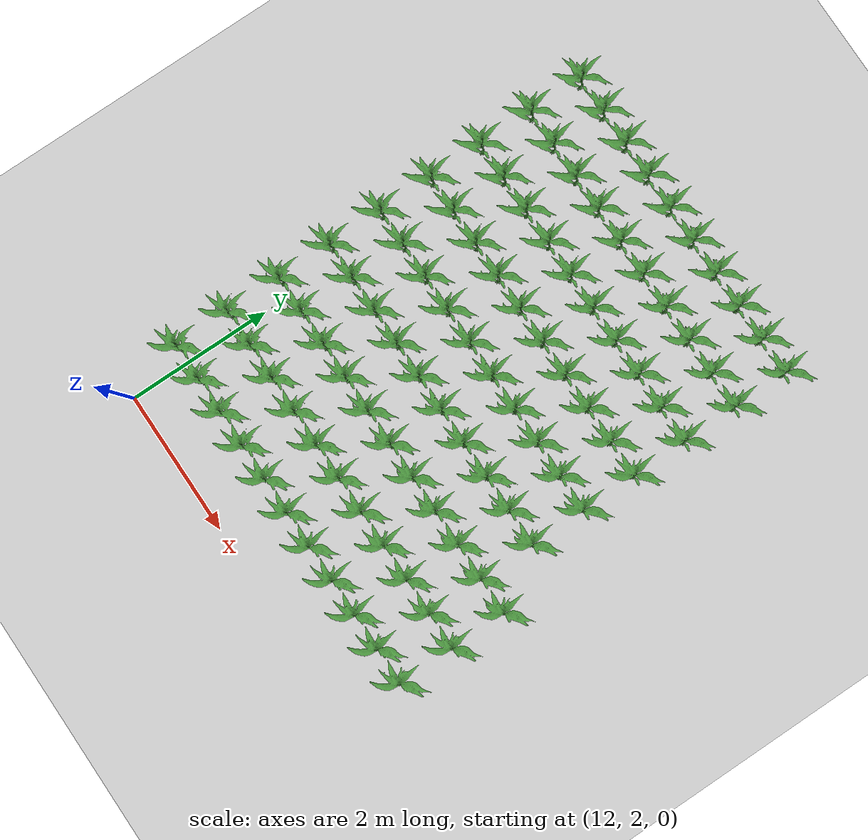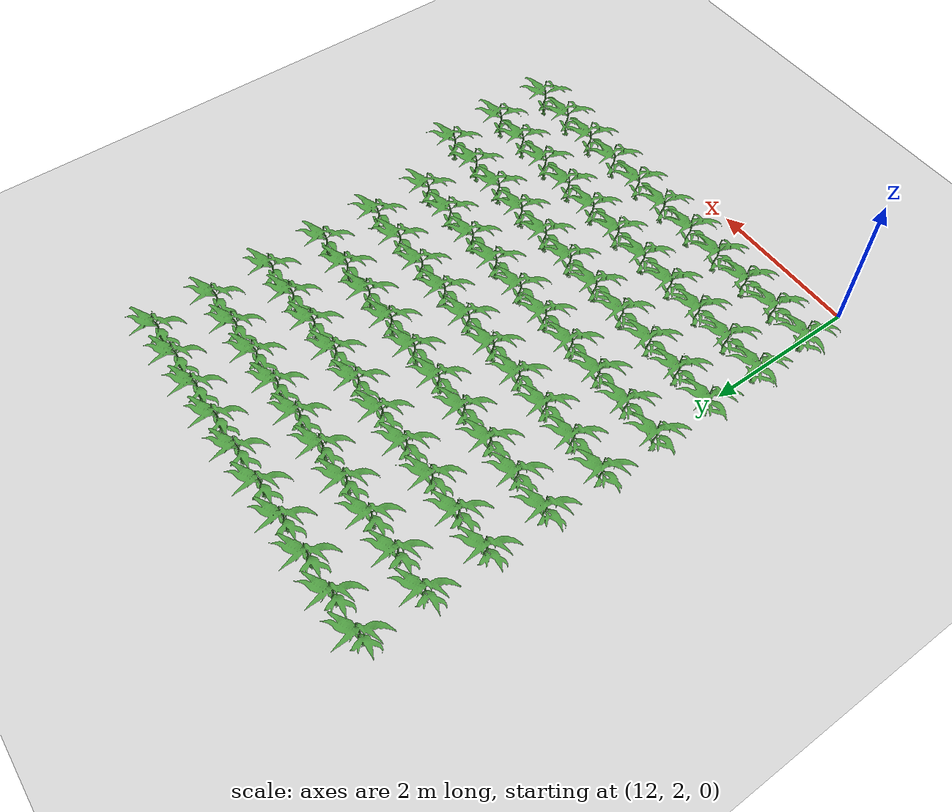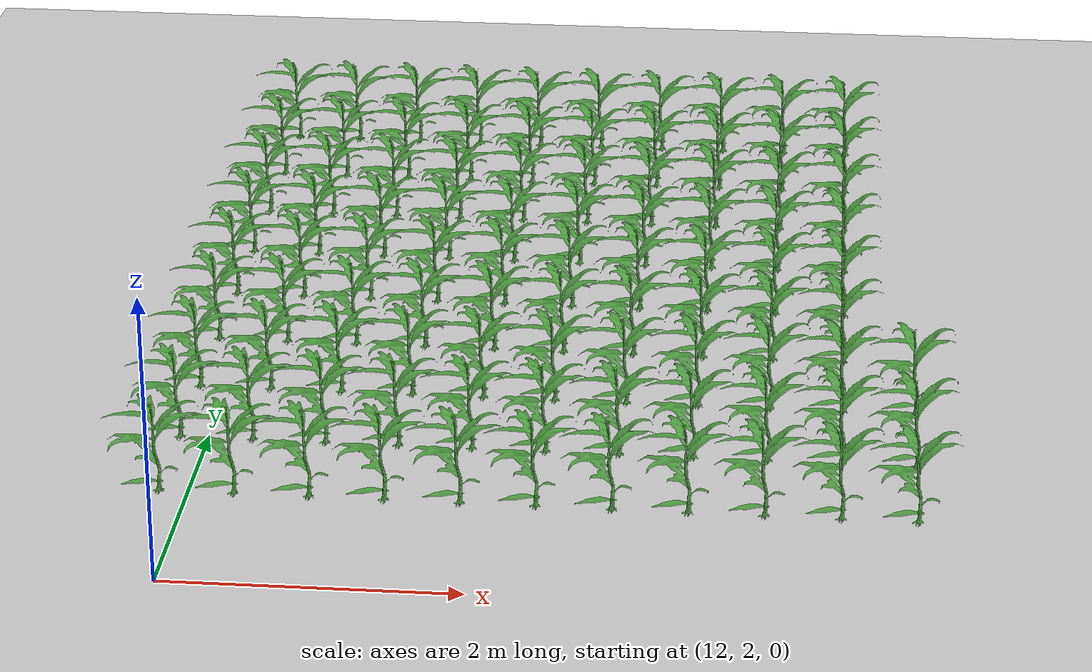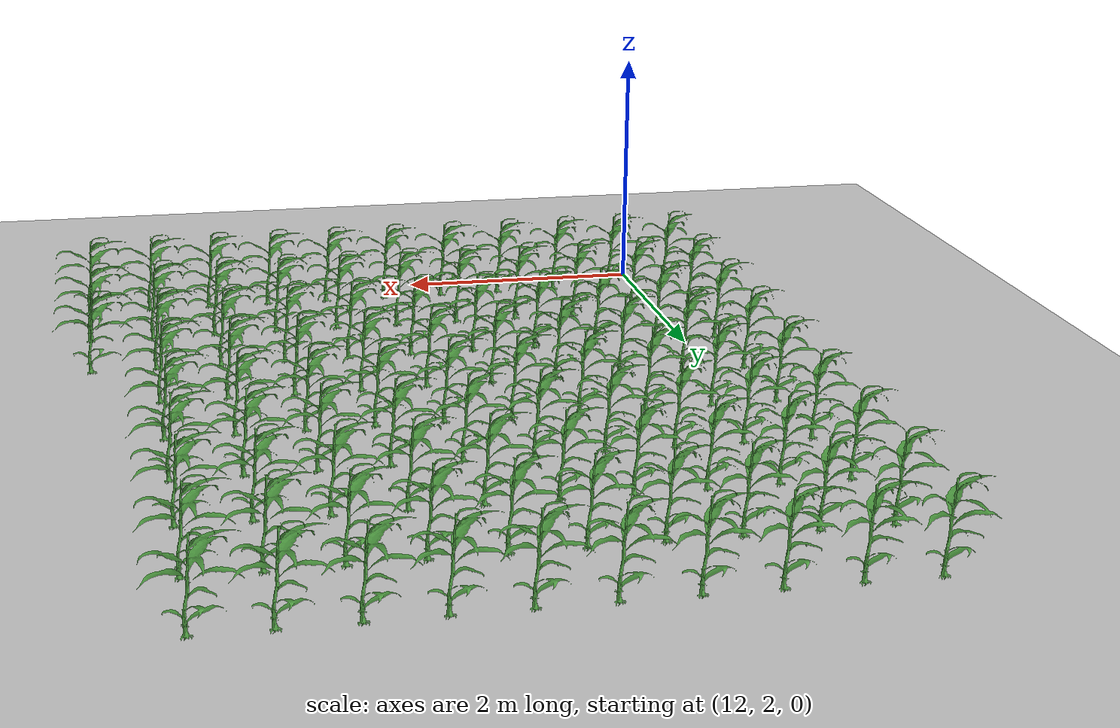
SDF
<sdf version="1.7">
 <world name="default">
  <model name="ground_plane">
   <static>1</static>
   <link name="link">
    <collision name="collision">
     <geometry><plane><normal>0 0 1</normal><size>100 100</size></plane></geometry>
     <surface>
      <contact><collide_bitmask>65535</collide_bitmask></contact>
      <friction><ode><mu>100</mu><mu2>50</mu2></ode></friction>
     </surface>
    </collision>
    <visual name="visual">
     <cast_shadows>0</cast_shadows>
     <geometry><plane><normal>0 0 1</normal><size>100 100</size></plane></geometry>
     <material>
      <script><uri>file://media/materials/scripts/gazebo.material</uri><name>Gazebo/Grey</name></script>
     </material>
    </visual>
   </link>
  </model>
  <model name="bush_1_nc_220">
   <static>1</static>
   <link name="link">
    <visual name="visual">
     <geometry>
      <mesh><uri>model://corn_stalk/meshes/corn_1.obj</uri><scale>0.002 0.002 0.001</scale></mesh>
     </geometry>
     <material>
      <script><uri>file://media/materials/scripts/gazebo.material</uri><name>Gazebo/Grass</name></script>
     </material>
    </visual>
   </link>
   <pose>10.0 4.572 0.171977 0 -0 0</pose>
  </model>
  <model name="bush_1_nc_221">
   <static>1</static>
   <link name="link">
    <visual name="visual">
     <geometry>
      <mesh><uri>model://corn_stalk/meshes/corn_1.obj</uri><scale>0.002 0.002 0.001</scale></mesh>
     </geometry>
     <material>
      <script><uri>file://media/materials/scripts/gazebo.material</uri><name>Gazebo/Grass</name></script>
     </material>
    </visual>
   </link>
   <pose>10.5 4.572 0.171977 0 -0 0</pose>
  </model>
  <model name="bush_1_nc_222">
   <static>1</static>
   <link name="link">
    <visual name="visual">
     <geometry>
      <mesh><uri>model://corn_stalk/meshes/corn_1.obj</uri><scale>0.002 0.002 0.001</scale></mesh>
     </geometry>
     <material>
      <script><uri>file://media/materials/scripts/gazebo.material</uri><name>Gazebo/Grass</name></script>
     </material>
    </visual>
   </link>
   <pose>11.0 4.572 0.171977 0 -0 0</pose>
  </model>
  <model name="bush_1_nc_223">
   <static>1</static>
   <link name="link">
    <visual name="visual">
     <geometry>
      <mesh><uri>model://corn_stalk/meshes/corn_1.obj</uri><scale>0.002 0.002 0.001</scale></mesh>
     </geometry>
     <material>
      <script><uri>file://media/materials/scripts/gazebo.material</uri><name>Gazebo/Grass</name></script>
     </material>
    </visual>
   </link>
   <pose>11.5 4.572 0.171977 0 -0 0</pose>
  </model>
  <model name="bush_1_nc_224">
   <static>1</static>
   <link name="link">
    <visual name="visual">
     <geometry>
      <mesh><uri>model://corn_stalk/meshes/corn_1.obj</uri><scale>0.002 0.002 0.001</scale></mesh>
     </geometry>
     <material>
      <script><uri>file://media/materials/scripts/gazebo.material</uri><name>Gazebo/Grass</name></script>
     </material>
    </visual>
   </link>
   <pose>12.0 4.572 0.171977 0 -0 0</pose>
  </model>
  <model name="bush_1_nc_225">
   <static>1</static>
   <link name="link">
    <visual name="visual">
     <geometry>
      <mesh><uri>model://corn_stalk/meshes/corn_1.obj</uri><scale>0.002 0.002 0.001</scale></mesh>
     </geometry>
     <material>
      <script><uri>file://media/materials/scripts/gazebo.material</uri><name>Gazebo/Grass</name></script>
     </material>
    </visual>
   </link>
   <pose>12.5 4.572 0.171977 0 -0 0</pose>
  </model>
  <model name="bush_1_nc_226">
   <static>1</static>
   <link name="link">
    <visual name="visual">
     <geometry>
      <mesh><uri>model://corn_stalk/meshes/corn_1.obj</uri><scale>0.002 0.002 0.001</scale></mesh>
     </geometry>
     <material>
      <script><uri>file://media/materials/scripts/gazebo.material</uri><name>Gazebo/Grass</name></script>
     </material>
    </visual>
   </link>
   <pose>13.0 4.572 0.171977 0 -0 0</pose>
  </model>
  <model name="bush_1_nc_227">
   <static>1</static>
   <link name="link">
    <visual name="visual">
     <geometry>
      <mesh><uri>model://corn_stalk/meshes/corn_1.obj</uri><scale>0.002 0.002 0.001</scale></mesh>
     </geometry>
     <material>
      <script><uri>file://media/materials/scripts/gazebo.material</uri><name>Gazebo/Grass</name></script>
     </material>
    </visual>
   </link>
   <pose>13.5 4.572 0.171977 0 -0 0</pose>
  </model>
  <model name="bush_1_nc_228">
   <static>1</static>
   <link name="link">
    <visual name="visual">
     <geometry>
      <mesh><uri>model://corn_stalk/meshes/corn_1.obj</uri><scale>0.002 0.002 0.001</scale></mesh>
     </geometry>
     <material>
      <script><uri>file://media/materials/scripts/gazebo.material</uri><name>Gazebo/Grass</name></script>
     </material>
    </visual>
   </link>
   <pose>14.0 4.572 0.171977 0 -0 0</pose>
  </model>
  <model name="bush_1_nc_229">
   <static>1</static>
   <link name="link">
    <visual name="visual">
     <geometry>
      <mesh><uri>model://corn_stalk/meshes/corn_1.obj</uri><scale>0.002 0.002 0.001</scale></mesh>
     </geometry>
     <material>
      <script><uri>file://media/materials/scripts/gazebo.material</uri><name>Gazebo/Grass</name></script>
     </material>
    </visual>
   </link>
   <pose>14.5 4.572 0.171977 0 -0 0</pose>
  </model>
  <model name="bush_1_nc_230">
   <static>1</static>
   <link name="link">
    <visual name="visual">
     <geometry>
      <mesh><uri>model://corn_stalk/meshes/corn_1.obj</uri><scale>0.002 0.002 0.001</scale></mesh>
     </geometry>
     <material>
      <script><uri>file://media/materials/scripts/gazebo.material</uri><name>Gazebo/Grass</name></script>
     </material>
    </visual>
   </link>
   <pose>15.0 4.572 0.171977 0 -0 0</pose>
  </model>
  <model name="bush_1_nc_260">
   <static>1</static>
   <link name="link">
    <visual name="visual">
     <geometry>
      <mesh><uri>model://corn_stalk/meshes/corn_1.obj</uri><scale>0.002 0.002 0.001</scale></mesh>
     </geometry>
     <material>
      <script><uri>file://media/materials/scripts/gazebo.material</uri><name>Gazebo/Grass</name></script>
     </material>
    </visual>
   </link>
   <pose>10.0 5.334 0.171977 0 -0 0</pose>
  </model>
  <model name="bush_1_nc_261">
   <static>1</static>
   <link name="link">
    <visual name="visual">
     <geometry>
      <mesh><uri>model://corn_stalk/meshes/corn_1.obj</uri><scale>0.002 0.002 0.001</scale></mesh>
     </geometry>
     <material>
      <script><uri>file://media/materials/scripts/gazebo.material</uri><name>Gazebo/Grass</name></script>
     </material>
    </visual>
   </link>
   <pose>10.5 5.334 0.171977 0 -0 0</pose>
  </model>
  <model name="bush_1_nc_262">
   <static>1</static>
   <link name="link">
    <visual name="visual">
     <geometry>
      <mesh><uri>model://corn_stalk/meshes/corn_1.obj</uri><scale>0.002 0.002 0.001</scale></mesh>
     </geometry>
     <material>
      <script><uri>file://media/materials/scripts/gazebo.material</uri><name>Gazebo/Grass</name></script>
     </material>
    </visual>
   </link>
   <pose>11.0 5.334 0.171977 0 -0 0</pose>
  </model>
  <model name="bush_1_nc_263">
   <static>1</static>
   <link name="link">
    <visual name="visual">
     <geometry>
      <mesh><uri>model://corn_stalk/meshes/corn_1.obj</uri><scale>0.002 0.002 0.001</scale></mesh>
     </geometry>
     <material>
      <script><uri>file://media/materials/scripts/gazebo.material</uri><name>Gazebo/Grass</name></script>
     </material>
    </visual>
   </link>
   <pose>11.5 5.334 0.171977 0 -0 0</pose>
  </model>
  <model name="bush_1_nc_264">
   <static>1</static>
   <link name="link">
    <visual name="visual">
     <geometry>
      <mesh><uri>model://corn_stalk/meshes/corn_1.obj</uri><scale>0.002 0.002 0.001</scale></mesh>
     </geometry>
     <material>
      <script><uri>file://media/materials/scripts/gazebo.material</uri><name>Gazebo/Grass</name></script>
     </material>
    </visual>
   </link>
   <pose>12.0 5.334 0.171977 0 -0 0</pose>
  </model>
  <model name="bush_1_nc_265">
   <static>1</static>
   <link name="link">
    <visual name="visual">
     <geometry>
      <mesh><uri>model://corn_stalk/meshes/corn_1.obj</uri><scale>0.002 0.002 0.001</scale></mesh>
     </geometry>
     <material>
      <script><uri>file://media/materials/scripts/gazebo.material</uri><name>Gazebo/Grass</name></script>
     </material>
    </visual>
   </link>
   <pose>12.5 5.334 0.171977 0 -0 0</pose>
  </model>
  <model name="bush_1_nc_266">
   <static>1</static>
   <link name="link">
    <visual name="visual">
     <geometry>
      <mesh><uri>model://corn_stalk/meshes/corn_1.obj</uri><scale>0.002 0.002 0.001</scale></mesh>
     </geometry>
     <material>
      <script><uri>file://media/materials/scripts/gazebo.material</uri><name>Gazebo/Grass</name></script>
     </material>
    </visual>
   </link>
   <pose>13.0 5.334 0.171977 0 -0 0</pose>
  </model>
  <model name="bush_1_nc_267">
   <static>1</static>
   <link name="link">
    <visual name="visual">
     <geometry>
      <mesh><uri>model://corn_stalk/meshes/corn_1.obj</uri><scale>0.002 0.002 0.001</scale></mesh>
     </geometry>
     <material>
      <script><uri>file://media/materials/scripts/gazebo.material</uri><name>Gazebo/Grass</name></script>
     </material>
    </visual>
   </link>
   <pose>13.5 5.334 0.171977 0 -0 0</pose>
  </model>
  <model name="bush_1_nc_268">
   <static>1</static>
   <link name="link">
    <visual name="visual">
     <geometry>
      <mesh><uri>model://corn_stalk/meshes/corn_1.obj</uri><scale>0.002 0.002 0.001</scale></mesh>
     </geometry>
     <material>
      <script><uri>file://media/materials/scripts/gazebo.material</uri><name>Gazebo/Grass</name></script>
     </material>
    </visual>
   </link>
   <pose>14.0 5.334 0.171977 0 -0 0</pose>
  </model>
  <model name="bush_1_nc_269">
   <static>1</static>
   <link name="link">
    <visual name="visual">
     <geometry>
      <mesh><uri>model://corn_stalk/meshes/corn_1.obj</uri><scale>0.002 0.002 0.001</scale></mesh>
     </geometry>
     <material>
      <script><uri>file://media/materials/scripts/gazebo.material</uri><name>Gazebo/Grass</name></script>
     </material>
    </visual>
   </link>
   <pose>14.5 5.334 0.171977 0 -0 0</pose>
  </model>
  <model name="bush_1_nc_270">
   <static>1</static>
   <link name="link">
    <visual name="visual">
     <geometry>
      <mesh><uri>model://corn_stalk/meshes/corn_1.obj</uri><scale>0.002 0.002 0.001</scale></mesh>
     </geometry>
     <material>
      <script><uri>file://media/materials/scripts/gazebo.material</uri><name>Gazebo/Grass</name></script>
     </material>
    </visual>
   </link>
   <pose>15.0 5.334 0.171977 0 -0 0</pose>
  </model>
  <model name="bush_1_nc_300">
   <static>1</static>
   <link name="link">
    <visual name="visual">
     <geometry>
      <mesh><uri>model://corn_stalk/meshes/corn_1.obj</uri><scale>0.002 0.002 0.001</scale></mesh>
     </geometry>
     <material>
      <script><uri>file://media/materials/scripts/gazebo.material</uri><name>Gazebo/Grass</name></script>
     </material>
    </visual>
   </link>
   <pose>10.0 6.096 0.171977 0 -0 0</pose>
  </model>
  <model name="bush_1_nc_301">
   <static>1</static>
   <link name="link">
    <visual name="visual">
     <geometry>
      <mesh><uri>model://corn_stalk/meshes/corn_1.obj</uri><scale>0.002 0.002 0.001</scale></mesh>
     </geometry>
     <material>
      <script><uri>file://media/materials/scripts/gazebo.material</uri><name>Gazebo/Grass</name></script>
     </material>
    </visual>
   </link>
   <pose>10.5 6.096 0.171977 0 -0 0</pose>
  </model>
  <model name="bush_1_nc_302">
   <static>1</static>
   <link name="link">
    <visual name="visual">
     <geometry>
      <mesh><uri>model://corn_stalk/meshes/corn_1.obj</uri><scale>0.002 0.002 0.001</scale></mesh>
     </geometry>
     <material>
      <script><uri>file://media/materials/scripts/gazebo.material</uri><name>Gazebo/Grass</name></script>
     </material>
    </visual>
   </link>
   <pose>11.0 6.096 0.171977 0 -0 0</pose>
  </model>
  <model name="bush_1_nc_303">
   <static>1</static>
   <link name="link">
    <visual name="visual">
     <geometry>
      <mesh><uri>model://corn_stalk/meshes/corn_1.obj</uri><scale>0.002 0.002 0.001</scale></mesh>
     </geometry>
     <material>
      <script><uri>file://media/materials/scripts/gazebo.material</uri><name>Gazebo/Grass</name></script>
     </material>
    </visual>
   </link>
   <pose>11.5 6.096 0.171977 0 -0 0</pose>
  </model>
  <model name="bush_1_nc_304">
   <static>1</static>
   <link name="link">
    <visual name="visual">
     <geometry>
      <mesh><uri>model://corn_stalk/meshes/corn_1.obj</uri><scale>0.002 0.002 0.001</scale></mesh>
     </geometry>
     <material>
      <script><uri>file://media/materials/scripts/gazebo.material</uri><name>Gazebo/Grass</name></script>
     </material>
    </visual>
   </link>
   <pose>12.0 6.096 0.171977 0 -0 0</pose>
  </model>
  <model name="bush_1_nc_305">
   <static>1</static>
   <link name="link">
    <visual name="visual">
     <geometry>
      <mesh><uri>model://corn_stalk/meshes/corn_1.obj</uri><scale>0.002 0.002 0.001</scale></mesh>
     </geometry>
     <material>
      <script><uri>file://media/materials/scripts/gazebo.material</uri><name>Gazebo/Grass</name></script>
     </material>
    </visual>
   </link>
   <pose>12.5 6.096 0.171977 0 -0 0</pose>
  </model>
  <model name="bush_1_nc_306">
   <static>1</static>
   <link name="link">
    <visual name="visual">
     <geometry>
      <mesh><uri>model://corn_stalk/meshes/corn_1.obj</uri><scale>0.002 0.002 0.001</scale></mesh>
     </geometry>
     <material>
      <script><uri>file://media/materials/scripts/gazebo.material</uri><name>Gazebo/Grass</name></script>
     </material>
    </visual>
   </link>
   <pose>13.0 6.096 0.171977 0 -0 0</pose>
  </model>
  <model name="bush_1_nc_307">
   <static>1</static>
   <link name="link">
    <visual name="visual">
     <geometry>
      <mesh><uri>model://corn_stalk/meshes/corn_1.obj</uri><scale>0.002 0.002 0.001</scale></mesh>
     </geometry>
     <material>
      <script><uri>file://media/materials/scripts/gazebo.material</uri><name>Gazebo/Grass</name></script>
     </material>
    </visual>
   </link>
   <pose>13.5 6.096 0.171977 0 -0 0</pose>
  </model>
  <model name="bush_1_nc_308">
   <static>1</static>
   <link name="link">
    <visual name="visual">
     <geometry>
      <mesh><uri>model://corn_stalk/meshes/corn_1.obj</uri><scale>0.002 0.002 0.001</scale></mesh>
     </geometry>
     <material>
      <script><uri>file://media/materials/scripts/gazebo.material</uri><name>Gazebo/Grass</name></script>
     </material>
    </visual>
   </link>
   <pose>14.0 6.096 0.171977 0 -0 0</pose>
  </model>
  <model name="bush_1_nc_309">
   <static>1</static>
   <link name="link">
    <visual name="visual">
     <geometry>
      <mesh><uri>model://corn_stalk/meshes/corn_1.obj</uri><scale>0.002 0.002 0.001</scale></mesh>
     </geometry>
     <material>
      <script><uri>file://media/materials/scripts/gazebo.material</uri><name>Gazebo/Grass</name></script>
     </material>
    </visual>
   </link>
   <pose>14.5 6.096 0.171977 0 -0 0</pose>
  </model>
  <model name="bush_1_nc_310">
   <static>1</static>
   <link name="link">
    <visual name="visual">
     <geometry>
      <mesh><uri>model://corn_stalk/meshes/corn_1.obj</uri><scale>0.002 0.002 0.001</scale></mesh>
     </geometry>
     <material>
      <script><uri>file://media/materials/scripts/gazebo.material</uri><name>Gazebo/Grass</name></script>
     </material>
    </visual>
   </link>
   <pose>15.0 6.096 0.171977 0 -0 0</pose>
  </model>
  <model name="bush_1_nc_340">
   <static>1</static>
   <link name="link">
    <visual name="visual">
     <geometry>
      <mesh><uri>model://corn_stalk/meshes/corn_1.obj</uri><scale>0.002 0.002 0.001</scale></mesh>
     </geometry>
     <material>
      <script><uri>file://media/materials/scripts/gazebo.material</uri><name>Gazebo/Grass</name></script>
     </material>
    </visual>
   </link>
   <pose>10.0 6.8580000000000005 0.171977 0 -0 0</pose>
  </model>
  <model name="bush_1_nc_341">
   <static>1</static>
   <link name="link">
    <visual name="visual">
     <geometry>
      <mesh><uri>model://corn_stalk/meshes/corn_1.obj</uri><scale>0.002 0.002 0.001</scale></mesh>
     </geometry>
     <material>
      <script><uri>file://media/materials/scripts/gazebo.material</uri><name>Gazebo/Grass</name></script>
     </material>
    </visual>
   </link>
   <pose>10.5 6.8580000000000005 0.171977 0 -0 0</pose>
  </model>
  <model name="bush_1_nc_342">
   <static>1</static>
   <link name="link">
    <visual name="visual">
     <geometry>
      <mesh><uri>model://corn_stalk/meshes/corn_1.obj</uri><scale>0.002 0.002 0.001</scale></mesh>
     </geometry>
     <material>
      <script><uri>file://media/materials/scripts/gazebo.material</uri><name>Gazebo/Grass</name></script>
     </material>
    </visual>
   </link>
   <pose>11.0 6.8580000000000005 0.171977 0 -0 0</pose>
  </model>
  <model name="bush_1_nc_343">
   <static>1</static>
   <link name="link">
    <visual name="visual">
     <geometry>
      <mesh><uri>model://corn_stalk/meshes/corn_1.obj</uri><scale>0.002 0.002 0.001</scale></mesh>
     </geometry>
     <material>
      <script><uri>file://media/materials/scripts/gazebo.material</uri><name>Gazebo/Grass</name></script>
     </material>
    </visual>
   </link>
   <pose>11.5 6.8580000000000005 0.171977 0 -0 0</pose>
  </model>
  <model name="bush_1_nc_344">
   <static>1</static>
   <link name="link">
    <visual name="visual">
     <geometry>
      <mesh><uri>model://corn_stalk/meshes/corn_1.obj</uri><scale>0.002 0.002 0.001</scale></mesh>
     </geometry>
     <material>
      <script><uri>file://media/materials/scripts/gazebo.material</uri><name>Gazebo/Grass</name></script>
     </material>
    </visual>
   </link>
   <pose>12.0 6.8580000000000005 0.171977 0 -0 0</pose>
  </model>
  <model name="bush_1_nc_345">
   <static>1</static>
   <link name="link">
    <visual name="visual">
     <geometry>
      <mesh><uri>model://corn_stalk/meshes/corn_1.obj</uri><scale>0.002 0.002 0.001</scale></mesh>
     </geometry>
     <material>
      <script><uri>file://media/materials/scripts/gazebo.material</uri><name>Gazebo/Grass</name></script>
     </material>
    </visual>
   </link>
   <pose>12.5 6.8580000000000005 0.171977 0 -0 0</pose>
  </model>
  <model name="bush_1_nc_346">
   <static>1</static>
   <link name="link">
    <visual name="visual">
     <geometry>
      <mesh><uri>model://corn_stalk/meshes/corn_1.obj</uri><scale>0.002 0.002 0.001</scale></mesh>
     </geometry>
     <material>
      <script><uri>file://media/materials/scripts/gazebo.material</uri><name>Gazebo/Grass</name></script>
     </material>
    </visual>
   </link>
   <pose>13.0 6.8580000000000005 0.171977 0 -0 0</pose>
  </model>
  <model name="bush_1_nc_347">
   <static>1</static>
   <link name="link">
    <visual name="visual">
     <geometry>
      <mesh><uri>model://corn_stalk/meshes/corn_1.obj</uri><scale>0.002 0.002 0.001</scale></mesh>
     </geometry>
     <material>
      <script><uri>file://media/materials/scripts/gazebo.material</uri><name>Gazebo/Grass</name></script>
     </material>
    </visual>
   </link>
   <pose>13.5 6.8580000000000005 0.171977 0 -0 0</pose>
  </model>
  <model name="bush_1_nc_348">
   <static>1</static>
   <link name="link">
    <visual name="visual">
     <geometry>
      <mesh><uri>model://corn_stalk/meshes/corn_1.obj</uri><scale>0.002 0.002 0.001</scale></mesh>
     </geometry>
     <material>
      <script><uri>file://media/materials/scripts/gazebo.material</uri><name>Gazebo/Grass</name></script>
     </material>
    </visual>
   </link>
   <pose>14.0 6.8580000000000005 0.171977 0 -0 0</pose>
  </model>
  <model name="bush_1_nc_349">
   <static>1</static>
   <link name="link">
    <visual name="visual">
     <geometry>
      <mesh><uri>model://corn_stalk/meshes/corn_1.obj</uri><scale>0.002 0.002 0.001</scale></mesh>
     </geometry>
     <material>
      <script><uri>file://media/materials/scripts/gazebo.material</uri><name>Gazebo/Grass</name></script>
     </material>
    </visual>
   </link>
   <pose>14.5 6.8580000000000005 0.171977 0 -0 0</pose>
  </model>
  <model name="bush_1_nc_380">
   <static>1</static>
   <link name="link">
    <visual name="visual">
     <geometry>
      <mesh><uri>model://corn_stalk/meshes/corn_1.obj</uri><scale>0.002 0.002 0.001</scale></mesh>
     </geometry>
     <material>
      <script><uri>file://media/materials/scripts/gazebo.material</uri><name>Gazebo/Grass</name></script>
     </material>
    </visual>
   </link>
   <pose>10.0 7.62 0.171977 0 -0 0</pose>
  </model>
  <model name="bush_1_nc_381">
   <static>1</static>
   <link name="link">
    <visual name="visual">
     <geometry>
      <mesh><uri>model://corn_stalk/meshes/corn_1.obj</uri><scale>0.002 0.002 0.001</scale></mesh>
     </geometry>
     <material>
      <script><uri>file://media/materials/scripts/gazebo.material</uri><name>Gazebo/Grass</name></script>
     </material>
    </visual>
   </link>
   <pose>10.5 7.62 0.171977 0 -0 0</pose>
  </model>
  <model name="bush_1_nc_382">
   <static>1</static>
   <link name="link">
    <visual name="visual">
     <geometry>
      <mesh><uri>model://corn_stalk/meshes/corn_1.obj</uri><scale>0.002 0.002 0.001</scale></mesh>
     </geometry>
     <material>
      <script><uri>file://media/materials/scripts/gazebo.material</uri><name>Gazebo/Grass</name></script>
     </material>
    </visual>
   </link>
   <pose>11.0 7.62 0.171977 0 -0 0</pose>
  </model>
  <model name="bush_1_nc_383">
   <static>1</static>
   <link name="link">
    <visual name="visual">
     <geometry>
      <mesh><uri>model://corn_stalk/meshes/corn_1.obj</uri><scale>0.002 0.002 0.001</scale></mesh>
     </geometry>
     <material>
      <script><uri>file://media/materials/scripts/gazebo.material</uri><name>Gazebo/Grass</name></script>
     </material>
    </visual>
   </link>
   <pose>11.5 7.62 0.171977 0 -0 0</pose>
  </model>
  <model name="bush_1_nc_384">
   <static>1</static>
   <link name="link">
    <visual name="visual">
     <geometry>
      <mesh><uri>model://corn_stalk/meshes/corn_1.obj</uri><scale>0.002 0.002 0.001</scale></mesh>
     </geometry>
     <material>
      <script><uri>file://media/materials/scripts/gazebo.material</uri><name>Gazebo/Grass</name></script>
     </material>
    </visual>
   </link>
   <pose>12.0 7.62 0.171977 0 -0 0</pose>
  </model>
  <model name="bush_1_nc_385">
   <static>1</static>
   <link name="link">
    <visual name="visual">
     <geometry>
      <mesh><uri>model://corn_stalk/meshes/corn_1.obj</uri><scale>0.002 0.002 0.001</scale></mesh>
     </geometry>
     <material>
      <script><uri>file://media/materials/scripts/gazebo.material</uri><name>Gazebo/Grass</name></script>
     </material>
    </visual>
   </link>
   <pose>12.5 7.62 0.171977 0 -0 0</pose>
  </model>
  <model name="bush_1_nc_386">
   <static>1</static>
   <link name="link">
    <visual name="visual">
     <geometry>
      <mesh><uri>model://corn_stalk/meshes/corn_1.obj</uri><scale>0.002 0.002 0.001</scale></mesh>
     </geometry>
     <material>
      <script><uri>file://media/materials/scripts/gazebo.material</uri><name>Gazebo/Grass</name></script>
     </material>
    </visual>
   </link>
   <pose>13.0 7.62 0.171977 0 -0 0</pose>
  </model>
  <model name="bush_1_nc_387">
   <static>1</static>
   <link name="link">
    <visual name="visual">
     <geometry>
      <mesh><uri>model://corn_stalk/meshes/corn_1.obj</uri><scale>0.002 0.002 0.001</scale></mesh>
     </geometry>
     <material>
      <script><uri>file://media/materials/scripts/gazebo.material</uri><name>Gazebo/Grass</name></script>
     </material>
    </visual>
   </link>
   <pose>13.5 7.62 0.171977 0 -0 0</pose>
  </model>
  <model name="bush_1_nc_388">
   <static>1</static>
   <link name="link">
    <visual name="visual">
     <geometry>
      <mesh><uri>model://corn_stalk/meshes/corn_1.obj</uri><scale>0.002 0.002 0.001</scale></mesh>
     </geometry>
     <material>
      <script><uri>file://media/materials/scripts/gazebo.material</uri><name>Gazebo/Grass</name></script>
     </material>
    </visual>
   </link>
   <pose>14.0 7.62 0.171977 0 -0 0</pose>
  </model>
  <model name="bush_1_nc_389">
   <static>1</static>
   <link name="link">
    <visual name="visual">
     <geometry>
      <mesh><uri>model://corn_stalk/meshes/corn_1.obj</uri><scale>0.002 0.002 0.001</scale></mesh>
     </geometry>
     <material>
      <script><uri>file://media/materials/scripts/gazebo.material</uri><name>Gazebo/Grass</name></script>
     </material>
    </visual>
   </link>
   <pose>14.5 7.62 0.171977 0 -0 0</pose>
  </model>
  <model name="bush_1_nc_420">
   <static>1</static>
   <link name="link">
    <visual name="visual">
     <geometry>
      <mesh><uri>model://corn_stalk/meshes/corn_1.obj</uri><scale>0.002 0.002 0.001</scale></mesh>
     </geometry>
     <material>
      <script><uri>file://media/materials/scripts/gazebo.material</uri><name>Gazebo/Grass</name></script>
     </material>
    </visual>
   </link>
   <pose>10.0 8.382 0.171977 0 -0 0</pose>
  </model>
  <model name="bush_1_nc_421">
   <static>1</static>
   <link name="link">
    <visual name="visual">
     <geometry>
      <mesh><uri>model://corn_stalk/meshes/corn_1.obj</uri><scale>0.002 0.002 0.001</scale></mesh>
     </geometry>
     <material>
      <script><uri>file://media/materials/scripts/gazebo.material</uri><name>Gazebo/Grass</name></script>
     </material>
    </visual>
   </link>
   <pose>10.5 8.382 0.171977 0 -0 0</pose>
  </model>
  <model name="bush_1_nc_422">
   <static>1</static>
   <link name="link">
    <visual name="visual">
     <geometry>
      <mesh><uri>model://corn_stalk/meshes/corn_1.obj</uri><scale>0.002 0.002 0.001</scale></mesh>
     </geometry>
     <material>
      <script><uri>file://media/materials/scripts/gazebo.material</uri><name>Gazebo/Grass</name></script>
     </material>
    </visual>
   </link>
   <pose>11.0 8.382 0.171977 0 -0 0</pose>
  </model>
  <model name="bush_1_nc_423">
   <static>1</static>
   <link name="link">
    <visual name="visual">
     <geometry>
      <mesh><uri>model://corn_stalk/meshes/corn_1.obj</uri><scale>0.002 0.002 0.001</scale></mesh>
     </geometry>
     <material>
      <script><uri>file://media/materials/scripts/gazebo.material</uri><name>Gazebo/Grass</name></script>
     </material>
    </visual>
   </link>
   <pose>11.5 8.382 0.171977 0 -0 0</pose>
  </model>
  <model name="bush_1_nc_424">
   <static>1</static>
   <link name="link">
    <visual name="visual">
     <geometry>
      <mesh><uri>model://corn_stalk/meshes/corn_1.obj</uri><scale>0.002 0.002 0.001</scale></mesh>
     </geometry>
     <material>
      <script><uri>file://media/materials/scripts/gazebo.material</uri><name>Gazebo/Grass</name></script>
     </material>
    </visual>
   </link>
   <pose>12.0 8.382 0.171977 0 -0 0</pose>
  </model>
  <model name="bush_1_nc_425">
   <static>1</static>
   <link name="link">
    <visual name="visual">
     <geometry>
      <mesh><uri>model://corn_stalk/meshes/corn_1.obj</uri><scale>0.002 0.002 0.001</scale></mesh>
     </geometry>
     <material>
      <script><uri>file://media/materials/scripts/gazebo.material</uri><name>Gazebo/Grass</name></script>
     </material>
    </visual>
   </link>
   <pose>12.5 8.382 0.171977 0 -0 0</pose>
  </model>
  <model name="bush_1_nc_426">
   <static>1</static>
   <link name="link">
    <visual name="visual">
     <geometry>
      <mesh><uri>model://corn_stalk/meshes/corn_1.obj</uri><scale>0.002 0.002 0.001</scale></mesh>
     </geometry>
     <material>
      <script><uri>file://media/materials/scripts/gazebo.material</uri><name>Gazebo/Grass</name></script>
     </material>
    </visual>
   </link>
   <pose>13.0 8.382 0.171977 0 -0 0</pose>
  </model>
  <model name="bush_1_nc_427">
   <static>1</static>
   <link name="link">
    <visual name="visual">
     <geometry>
      <mesh><uri>model://corn_stalk/meshes/corn_1.obj</uri><scale>0.002 0.002 0.001</scale></mesh>
     </geometry>
     <material>
      <script><uri>file://media/materials/scripts/gazebo.material</uri><name>Gazebo/Grass</name></script>
     </material>
    </visual>
   </link>
   <pose>13.5 8.382 0.171977 0 -0 0</pose>
  </model>
  <model name="bush_1_nc_428">
   <static>1</static>
   <link name="link">
    <visual name="visual">
     <geometry>
      <mesh><uri>model://corn_stalk/meshes/corn_1.obj</uri><scale>0.002 0.002 0.001</scale></mesh>
     </geometry>
     <material>
      <script><uri>file://media/materials/scripts/gazebo.material</uri><name>Gazebo/Grass</name></script>
     </material>
    </visual>
   </link>
   <pose>14.0 8.382 0.171977 0 -0 0</pose>
  </model>
  <model name="bush_1_nc_429">
   <static>1</static>
   <link name="link">
    <visual name="visual">
     <geometry>
      <mesh><uri>model://corn_stalk/meshes/corn_1.obj</uri><scale>0.002 0.002 0.001</scale></mesh>
     </geometry>
     <material>
      <script><uri>file://media/materials/scripts/gazebo.material</uri><name>Gazebo/Grass</name></script>
     </material>
    </visual>
   </link>
   <pose>14.5 8.382 0.171977 0 -0 0</pose>
  </model>
  <model name="bush_1_nc_460">
   <static>1</static>
   <link name="link">
    <visual name="visual">
     <geometry>
      <mesh><uri>model://corn_stalk/meshes/corn_1.obj</uri><scale>0.002 0.002 0.001</scale></mesh>
     </geometry>
     <material>
      <script><uri>file://media/materials/scripts/gazebo.material</uri><name>Gazebo/Grass</name></script>
     </material>
    </visual>
   </link>
   <pose>10.0 9.144 0.171977 0 -0 0</pose>
  </model>
  <model name="bush_1_nc_461">
   <static>1</static>
   <link name="link">
    <visual name="visual">
     <geometry>
      <mesh><uri>model://corn_stalk/meshes/corn_1.obj</uri><scale>0.002 0.002 0.001</scale></mesh>
     </geometry>
     <material>
      <script><uri>file://media/materials/scripts/gazebo.material</uri><name>Gazebo/Grass</name></script>
     </material>
    </visual>
   </link>
   <pose>10.5 9.144 0.171977 0 -0 0</pose>
  </model>
  <model name="bush_1_nc_462">
   <static>1</static>
   <link name="link">
    <visual name="visual">
     <geometry>
      <mesh><uri>model://corn_stalk/meshes/corn_1.obj</uri><scale>0.002 0.002 0.001</scale></mesh>
     </geometry>
     <material>
      <script><uri>file://media/materials/scripts/gazebo.material</uri><name>Gazebo/Grass</name></script>
     </material>
    </visual>
   </link>
   <pose>11.0 9.144 0.171977 0 -0 0</pose>
  </model>
  <model name="bush_1_nc_463">
   <static>1</static>
   <link name="link">
    <visual name="visual">
     <geometry>
      <mesh><uri>model://corn_stalk/meshes/corn_1.obj</uri><scale>0.002 0.002 0.001</scale></mesh>
     </geometry>
     <material>
      <script><uri>file://media/materials/scripts/gazebo.material</uri><name>Gazebo/Grass</name></script>
     </material>
    </visual>
   </link>
   <pose>11.5 9.144 0.171977 0 -0 0</pose>
  </model>
  <model name="bush_1_nc_464">
   <static>1</static>
   <link name="link">
    <visual name="visual">
     <geometry>
      <mesh><uri>model://corn_stalk/meshes/corn_1.obj</uri><scale>0.002 0.002 0.001</scale></mesh>
     </geometry>
     <material>
      <script><uri>file://media/materials/scripts/gazebo.material</uri><name>Gazebo/Grass</name></script>
     </material>
    </visual>
   </link>
   <pose>12.0 9.144 0.171977 0 -0 0</pose>
  </model>
  <model name="bush_1_nc_465">
   <static>1</static>
   <link name="link">
    <visual name="visual">
     <geometry>
      <mesh><uri>model://corn_stalk/meshes/corn_1.obj</uri><scale>0.002 0.002 0.001</scale></mesh>
     </geometry>
     <material>
      <script><uri>file://media/materials/scripts/gazebo.material</uri><name>Gazebo/Grass</name></script>
     </material>
    </visual>
   </link>
   <pose>12.5 9.144 0.171977 0 -0 0</pose>
  </model>
  <model name="bush_1_nc_466">
   <static>1</static>
   <link name="link">
    <visual name="visual">
     <geometry>
      <mesh><uri>model://corn_stalk/meshes/corn_1.obj</uri><scale>0.002 0.002 0.001</scale></mesh>
     </geometry>
     <material>
      <script><uri>file://media/materials/scripts/gazebo.material</uri><name>Gazebo/Grass</name></script>
     </material>
    </visual>
   </link>
   <pose>13.0 9.144 0.171977 0 -0 0</pose>
  </model>
  <model name="bush_1_nc_467">
   <static>1</static>
   <link name="link">
    <visual name="visual">
     <geometry>
      <mesh><uri>model://corn_stalk/meshes/corn_1.obj</uri><scale>0.002 0.002 0.001</scale></mesh>
     </geometry>
     <material>
      <script><uri>file://media/materials/scripts/gazebo.material</uri><name>Gazebo/Grass</name></script>
     </material>
    </visual>
   </link>
   <pose>13.5 9.144 0.171977 0 -0 0</pose>
  </model>
  <model name="bush_1_nc_468">
   <static>1</static>
   <link name="link">
    <visual name="visual">
     <geometry>
      <mesh><uri>model://corn_stalk/meshes/corn_1.obj</uri><scale>0.002 0.002 0.001</scale></mesh>
     </geometry>
     <material>
      <script><uri>file://media/materials/scripts/gazebo.material</uri><name>Gazebo/Grass</name></script>
     </material>
    </visual>
   </link>
   <pose>14.0 9.144 0.171977 0 -0 0</pose>
  </model>
  <model name="bush_1_nc_469">
   <static>1</static>
   <link name="link">
    <visual name="visual">
     <geometry>
      <mesh><uri>model://corn_stalk/meshes/corn_1.obj</uri><scale>0.002 0.002 0.001</scale></mesh>
     </geometry>
     <material>
      <script><uri>file://media/materials/scripts/gazebo.material</uri><name>Gazebo/Grass</name></script>
     </material>
    </visual>
   </link>
   <pose>14.5 9.144 0.171977 0 -0 0</pose>
  </model>
  <model name="bush_1_nc_500">
   <static>1</static>
   <link name="link">
    <visual name="visual">
     <geometry>
      <mesh><uri>model://corn_stalk/meshes/corn_1.obj</uri><scale>0.002 0.002 0.001</scale></mesh>
     </geometry>
     <material>
      <script><uri>file://media/materials/scripts/gazebo.material</uri><name>Gazebo/Grass</name></script>
     </material>
    </visual>
   </link>
   <pose>10.0 9.906 0.171977 0 -0 0</pose>
  </model>
  <model name="bush_1_nc_501">
   <static>1</static>
   <link name="link">
    <visual name="visual">
     <geometry>
      <mesh><uri>model://corn_stalk/meshes/corn_1.obj</uri><scale>0.002 0.002 0.001</scale></mesh>
     </geometry>
     <material>
      <script><uri>file://media/materials/scripts/gazebo.material</uri><name>Gazebo/Grass</name></script>
     </material>
    </visual>
   </link>
   <pose>10.5 9.906 0.171977 0 -0 0</pose>
  </model>
  <model name="bush_1_nc_502">
   <static>1</static>
   <link name="link">
    <visual name="visual">
     <geometry>
      <mesh><uri>model://corn_stalk/meshes/corn_1.obj</uri><scale>0.002 0.002 0.001</scale></mesh>
     </geometry>
     <material>
      <script><uri>file://media/materials/scripts/gazebo.material</uri><name>Gazebo/Grass</name></script>
     </material>
    </visual>
   </link>
   <pose>11.0 9.906 0.171977 0 -0 0</pose>
  </model>
  <model name="bush_1_nc_503">
   <static>1</static>
   <link name="link">
    <visual name="visual">
     <geometry>
      <mesh><uri>model://corn_stalk/meshes/corn_1.obj</uri><scale>0.002 0.002 0.001</scale></mesh>
     </geometry>
     <material>
      <script><uri>file://media/materials/scripts/gazebo.material</uri><name>Gazebo/Grass</name></script>
     </material>
    </visual>
   </link>
   <pose>11.5 9.906 0.171977 0 -0 0</pose>
  </model>
  <model name="bush_1_nc_504">
   <static>1</static>
   <link name="link">
    <visual name="visual">
     <geometry>
      <mesh><uri>model://corn_stalk/meshes/corn_1.obj</uri><scale>0.002 0.002 0.001</scale></mesh>
     </geometry>
     <material>
      <script><uri>file://media/materials/scripts/gazebo.material</uri><name>Gazebo/Grass</name></script>
     </material>
    </visual>
   </link>
   <pose>12.0 9.906 0.171977 0 -0 0</pose>
  </model>
  <model name="bush_1_nc_505">
   <static>1</static>
   <link name="link">
    <visual name="visual">
     <geometry>
      <mesh><uri>model://corn_stalk/meshes/corn_1.obj</uri><scale>0.002 0.002 0.001</scale></mesh>
     </geometry>
     <material>
      <script><uri>file://media/materials/scripts/gazebo.material</uri><name>Gazebo/Grass</name></script>
     </material>
    </visual>
   </link>
   <pose>12.5 9.906 0.171977 0 -0 0</pose>
  </model>
  <model name="bush_1_nc_506">
   <static>1</static>
   <link name="link">
    <visual name="visual">
     <geometry>
      <mesh><uri>model://corn_stalk/meshes/corn_1.obj</uri><scale>0.002 0.002 0.001</scale></mesh>
     </geometry>
     <material>
      <script><uri>file://media/materials/scripts/gazebo.material</uri><name>Gazebo/Grass</name></script>
     </material>
    </visual>
   </link>
   <pose>13.0 9.906 0.171977 0 -0 0</pose>
  </model>
  <model name="bush_1_nc_507">
   <static>1</static>
   <link name="link">
    <visual name="visual">
     <geometry>
      <mesh><uri>model://corn_stalk/meshes/corn_1.obj</uri><scale>0.002 0.002 0.001</scale></mesh>
     </geometry>
     <material>
      <script><uri>file://media/materials/scripts/gazebo.material</uri><name>Gazebo/Grass</name></script>
     </material>
    </visual>
   </link>
   <pose>13.5 9.906 0.171977 0 -0 0</pose>
  </model>
  <model name="bush_1_nc_508">
   <static>1</static>
   <link name="link">
    <visual name="visual">
     <geometry>
      <mesh><uri>model://corn_stalk/meshes/corn_1.obj</uri><scale>0.002 0.002 0.001</scale></mesh>
     </geometry>
     <material>
      <script><uri>file://media/materials/scripts/gazebo.material</uri><name>Gazebo/Grass</name></script>
     </material>
    </visual>
   </link>
   <pose>14.0 9.906 0.171977 0 -0 0</pose>
  </model>
  <model name="bush_1_nc_509">
   <static>1</static>
   <link name="link">
    <visual name="visual">
     <geometry>
      <mesh><uri>model://corn_stalk/meshes/corn_1.obj</uri><scale>0.002 0.002 0.001</scale></mesh>
     </geometry>
     <material>
      <script><uri>file://media/materials/scripts/gazebo.material</uri><name>Gazebo/Grass</name></script>
     </material>
    </visual>
   </link>
   <pose>14.5 9.906 0.171977 0 -0 0</pose>
  </model>
  <model name="bush_1_nc_540">
   <static>1</static>
   <link name="link">
    <visual name="visual">
     <geometry>
      <mesh><uri>model://corn_stalk/meshes/corn_1.obj</uri><scale>0.002 0.002 0.001</scale></mesh>
     </geometry>
     <material>
      <script><uri>file://media/materials/scripts/gazebo.material</uri><name>Gazebo/Grass</name></script>
     </material>
    </visual>
   </link>
   <pose>10.0 10.668 0.171977 0 -0 0</pose>
  </model>
  <model name="bush_1_nc_541">
   <static>1</static>
   <link name="link">
    <visual name="visual">
     <geometry>
      <mesh><uri>model://corn_stalk/meshes/corn_1.obj</uri><scale>0.002 0.002 0.001</scale></mesh>
     </geometry>
     <material>
      <script><uri>file://media/materials/scripts/gazebo.material</uri><name>Gazebo/Grass</name></script>
     </material>
    </visual>
   </link>
   <pose>10.5 10.668 0.171977 0 -0 0</pose>
  </model>
  <model name="bush_1_nc_542">
   <static>1</static>
   <link name="link">
    <visual name="visual">
     <geometry>
      <mesh><uri>model://corn_stalk/meshes/corn_1.obj</uri><scale>0.002 0.002 0.001</scale></mesh>
     </geometry>
     <material>
      <script><uri>file://media/materials/scripts/gazebo.material</uri><name>Gazebo/Grass</name></script>
     </material>
    </visual>
   </link>
   <pose>11.0 10.668 0.171977 0 -0 0</pose>
  </model>
  <model name="bush_1_nc_543">
   <static>1</static>
   <link name="link">
    <visual name="visual">
     <geometry>
      <mesh><uri>model://corn_stalk/meshes/corn_1.obj</uri><scale>0.002 0.002 0.001</scale></mesh>
     </geometry>
     <material>
      <script><uri>file://media/materials/scripts/gazebo.material</uri><name>Gazebo/Grass</name></script>
     </material>
    </visual>
   </link>
   <pose>11.5 10.668 0.171977 0 -0 0</pose>
  </model>
  <model name="bush_1_nc_544">
   <static>1</static>
   <link name="link">
    <visual name="visual">
     <geometry>
      <mesh><uri>model://corn_stalk/meshes/corn_1.obj</uri><scale>0.002 0.002 0.001</scale></mesh>
     </geometry>
     <material>
      <script><uri>file://media/materials/scripts/gazebo.material</uri><name>Gazebo/Grass</name></script>
     </material>
    </visual>
   </link>
   <pose>12.0 10.668 0.171977 0 -0 0</pose>
  </model>
  <model name="bush_1_nc_545">
   <static>1</static>
   <link name="link">
    <visual name="visual">
     <geometry>
      <mesh><uri>model://corn_stalk/meshes/corn_1.obj</uri><scale>0.002 0.002 0.001</scale></mesh>
     </geometry>
     <material>
      <script><uri>file://media/materials/scripts/gazebo.material</uri><name>Gazebo/Grass</name></script>
     </material>
    </visual>
   </link>
   <pose>12.5 10.668 0.171977 0 -0 0</pose>
  </model>
  <model name="bush_1_nc_546">
   <static>1</static>
   <link name="link">
    <visual name="visual">
     <geometry>
      <mesh><uri>model://corn_stalk/meshes/corn_1.obj</uri><scale>0.002 0.002 0.001</scale></mesh>
     </geometry>
     <material>
      <script><uri>file://media/materials/scripts/gazebo.material</uri><name>Gazebo/Grass</name></script>
     </material>
    </visual>
   </link>
   <pose>13.0 10.668 0.171977 0 -0 0</pose>
  </model>
  <model name="bush_1_nc_547">
   <static>1</static>
   <link name="link">
    <visual name="visual">
     <geometry>
      <mesh><uri>model://corn_stalk/meshes/corn_1.obj</uri><scale>0.002 0.002 0.001</scale></mesh>
     </geometry>
     <material>
      <script><uri>file://media/materials/scripts/gazebo.material</uri><name>Gazebo/Grass</name></script>
     </material>
    </visual>
   </link>
   <pose>13.5 10.668 0.171977 0 -0 0</pose>
  </model>
  <model name="bush_1_nc_548">
   <static>1</static>
   <link name="link">
    <visual name="visual">
     <geometry>
      <mesh><uri>model://corn_stalk/meshes/corn_1.obj</uri><scale>0.002 0.002 0.001</scale></mesh>
     </geometry>
     <material>
      <script><uri>file://media/materials/scripts/gazebo.material</uri><name>Gazebo/Grass</name></script>
     </material>
    </visual>
   </link>
   <pose>14.0 10.668 0.171977 0 -0 0</pose>
  </model>
  <model name="bush_1_nc_549">
   <static>1</static>
   <link name="link">
    <visual name="visual">
     <geometry>
      <mesh><uri>model://corn_stalk/meshes/corn_1.obj</uri><scale>0.002 0.002 0.001</scale></mesh>
     </geometry>
     <material>
      <script><uri>file://media/materials/scripts/gazebo.material</uri><name>Gazebo/Grass</name></script>
     </material>
    </visual>
   </link>
   <pose>14.5 10.668 0.171977 0 -0 0</pose>
  </model>
 </world>
</sdf>
